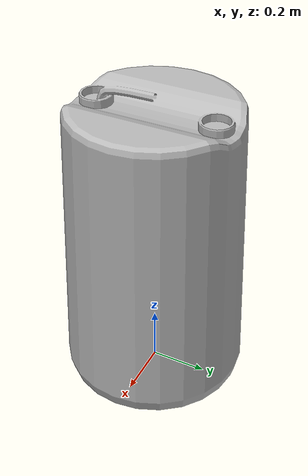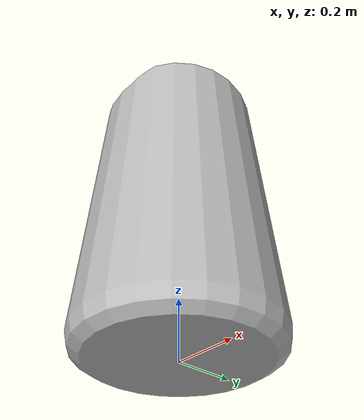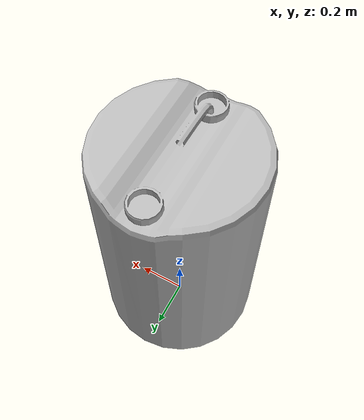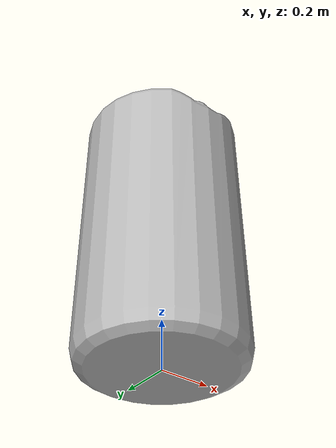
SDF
<?xml version="1.0"?>
<sdf version="1.6">
  <model name="post">
    <static>true</static>
    <pose>0 0 0 0 0 0</pose>
    <link name="base_link">
      <visual name="visual">
        <geometry>
           <mesh>
            <uri>file://post/meshes/post.dae</uri>
          </mesh>
        </geometry>
      </visual>
      <collision name="collision">
        <pose>0 0 0.5 0 0 0</pose>
        <geometry>
          <cylinder>
            <radius>0.3</radius>
            <length>1</length>
          </cylinder>
        </geometry>
      </collision>
    </link>
  </model>
</sdf>
